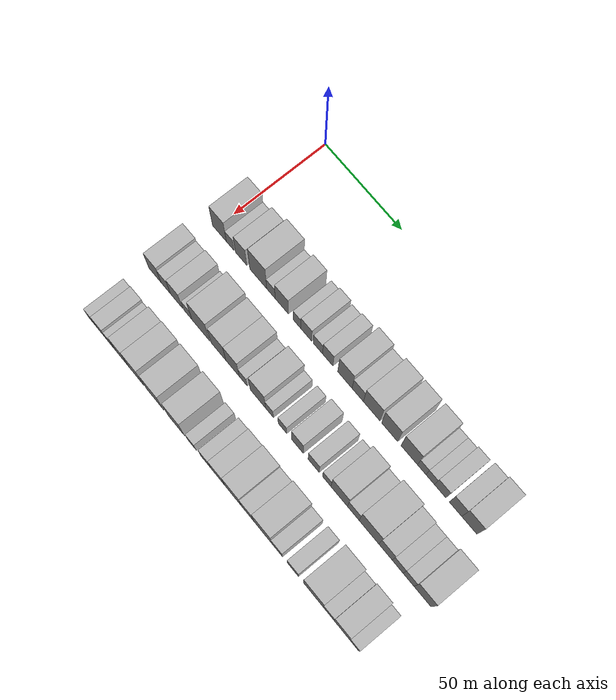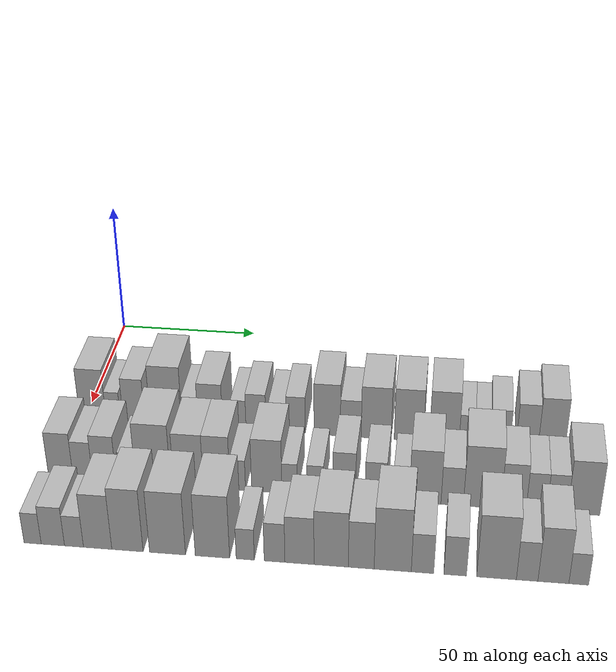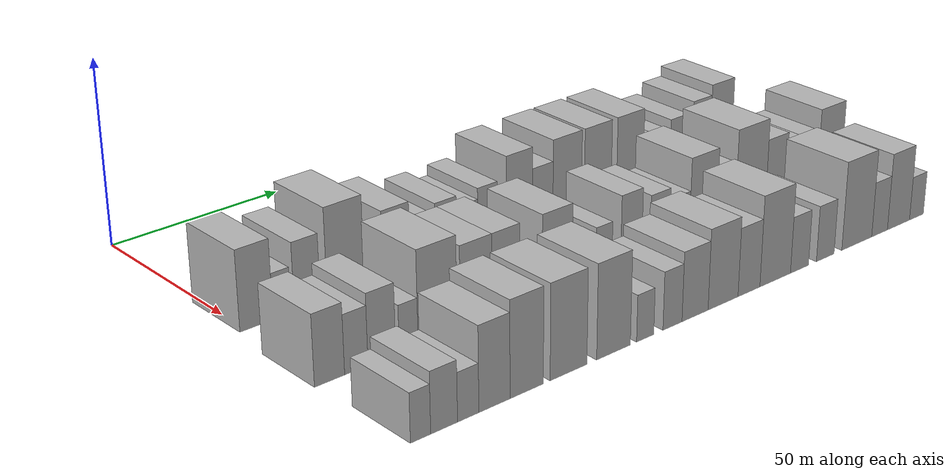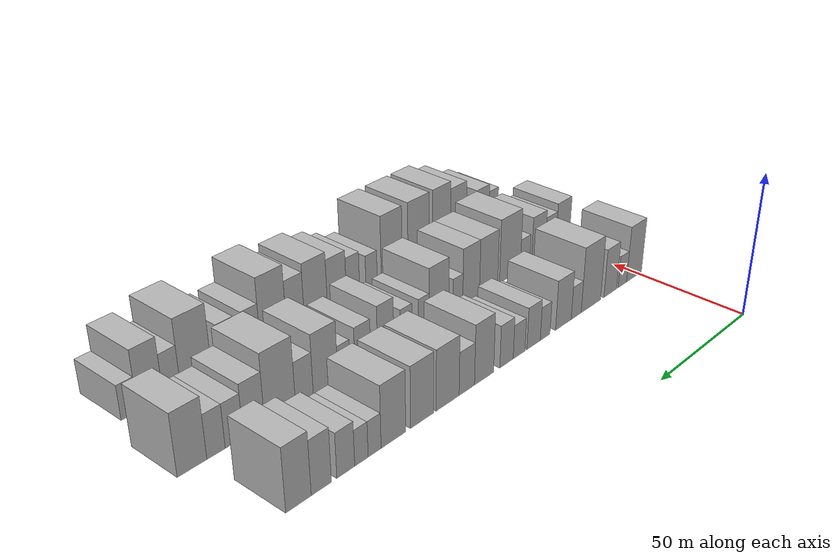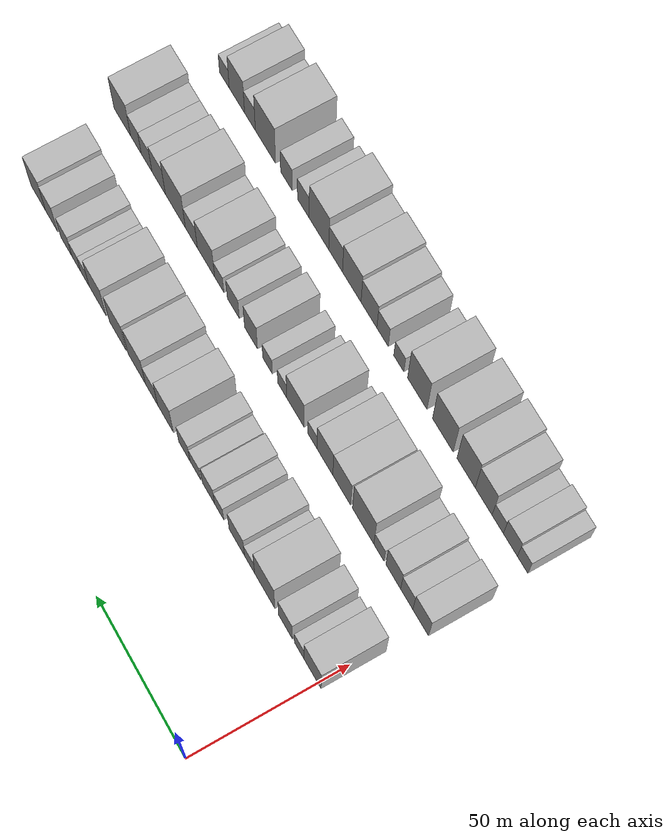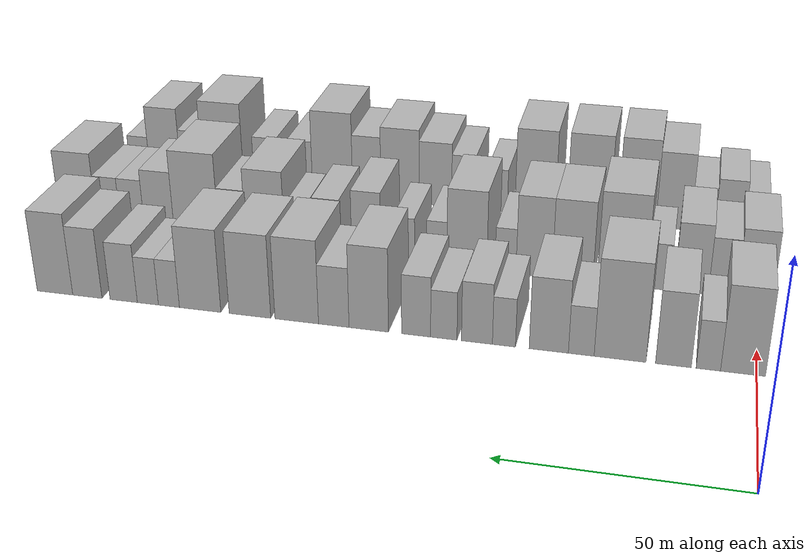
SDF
<sdf version="1.6">
 <world name="default">
  <model name="building_40">
   <static>1</static>
   <pose>50.0000 2.8850 0 0.000000 0.000000 0.000000</pose>
   <link name="link">
    <pose>0 0 10.50 0 0 0</pose>
    <collision name="collision"><geometry><box><size>20.0000 9.2605 21.0000</size></box></geometry></collision>
    <visual name="visual">
     <cast_shadows>0</cast_shadows>
     <geometry><box><size>20.0000 9.2605 21.0000</size></box></geometry>
     <material>
      <script>
       <uri>model://HANNAS_wall/materials/scripts</uri>
       <uri>model://HANNAS_wall/materials/textures</uri>
       <name>vrc/HANNAS_wall</name>
      </script>
     </material>
    </visual>
   </link>
  </model>
  <model name="building_41">
   <static>1</static>
   <pose>50.0000 10.0481 0 0.000000 0.000000 0.000000</pose>
   <link name="link">
    <pose>0 0 6.00 0 0 0</pose>
    <collision name="collision"><geometry><box><size>20.0000 5.0657 12.0000</size></box></geometry></collision>
    <visual name="visual">
     <cast_shadows>0</cast_shadows>
     <geometry><box><size>20.0000 5.0657 12.0000</size></box></geometry>
     <material>
      <script>
       <uri>model://HANNAS_wall/materials/scripts</uri>
       <uri>model://HANNAS_wall/materials/textures</uri>
       <name>vrc/HANNAS_wall</name>
      </script>
     </material>
    </visual>
   </link>
  </model>
  <model name="building_42">
   <static>1</static>
   <pose>50.0000 17.3400 0 0.000000 0.000000 0.000000</pose>
   <link name="link">
    <pose>0 0 9.00 0 0 0</pose>
    <collision name="collision"><geometry><box><size>20.0000 7.5182 18.0000</size></box></geometry></collision>
    <visual name="visual">
     <cast_shadows>0</cast_shadows>
     <geometry><box><size>20.0000 7.5182 18.0000</size></box></geometry>
     <material>
      <script>
       <uri>model://HANNAS_wall/materials/scripts</uri>
       <uri>model://HANNAS_wall/materials/textures</uri>
       <name>vrc/HANNAS_wall</name>
      </script>
     </material>
    </visual>
   </link>
  </model>
  <model name="building_43">
   <static>1</static>
   <pose>50.0000 28.6261 0 0.000000 0.000000 0.000000</pose>
   <link name="link">
    <pose>0 0 12.00 0 0 0</pose>
    <collision name="collision"><geometry><box><size>20.0000 11.0540 24.0000</size></box></geometry></collision>
    <visual name="visual">
     <cast_shadows>0</cast_shadows>
     <geometry><box><size>20.0000 11.0540 24.0000</size></box></geometry>
     <material>
      <script>
       <uri>model://HANNAS_wall/materials/scripts</uri>
       <uri>model://HANNAS_wall/materials/textures</uri>
       <name>vrc/HANNAS_wall</name>
      </script>
     </material>
    </visual>
   </link>
  </model>
  <model name="building_44">
   <static>1</static>
   <pose>50.0000 36.9282 0 0.000000 0.000000 0.000000</pose>
   <link name="link">
    <pose>0 0 6.00 0 0 0</pose>
    <collision name="collision"><geometry><box><size>20.0000 5.5501 12.0000</size></box></geometry></collision>
    <visual name="visual">
     <cast_shadows>0</cast_shadows>
     <geometry><box><size>20.0000 5.5501 12.0000</size></box></geometry>
     <material>
      <script>
       <uri>model://HANNAS_wall/materials/scripts</uri>
       <uri>model://HANNAS_wall/materials/textures</uri>
       <name>vrc/HANNAS_wall</name>
      </script>
     </material>
    </visual>
   </link>
  </model>
  <model name="building_45">
   <static>1</static>
   <pose>50.0000 43.9661 0 0.000000 0.000000 0.000000</pose>
   <link name="link">
    <pose>0 0 9.00 0 0 0</pose>
    <collision name="collision"><geometry><box><size>20.0000 8.5257 18.0000</size></box></geometry></collision>
    <visual name="visual">
     <cast_shadows>0</cast_shadows>
     <geometry><box><size>20.0000 8.5257 18.0000</size></box></geometry>
     <material>
      <script>
       <uri>model://HANNAS_wall/materials/scripts</uri>
       <uri>model://HANNAS_wall/materials/textures</uri>
       <name>vrc/HANNAS_wall</name>
      </script>
     </material>
    </visual>
   </link>
  </model>
  <model name="building_46">
   <static>1</static>
   <pose>50.0000 53.7685 0 0.000000 0.000000 0.000000</pose>
   <link name="link">
    <pose>0 0 6.00 0 0 0</pose>
    <collision name="collision"><geometry><box><size>20.0000 5.0791 12.0000</size></box></geometry></collision>
    <visual name="visual">
     <cast_shadows>0</cast_shadows>
     <geometry><box><size>20.0000 5.0791 12.0000</size></box></geometry>
     <material>
      <script>
       <uri>model://HANNAS_wall/materials/scripts</uri>
       <uri>model://HANNAS_wall/materials/textures</uri>
       <name>vrc/HANNAS_wall</name>
      </script>
     </material>
    </visual>
   </link>
  </model>
  <model name="building_47">
   <static>1</static>
   <pose>50.0000 59.7450 0 0.000000 0.000000 0.000000</pose>
   <link name="link">
    <pose>0 0 7.50 0 0 0</pose>
    <collision name="collision"><geometry><box><size>20.0000 6.8741 15.0000</size></box></geometry></collision>
    <visual name="visual">
     <cast_shadows>0</cast_shadows>
     <geometry><box><size>20.0000 6.8741 15.0000</size></box></geometry>
     <material>
      <script>
       <uri>model://HANNAS_wall/materials/scripts</uri>
       <uri>model://HANNAS_wall/materials/textures</uri>
       <name>vrc/HANNAS_wall</name>
      </script>
     </material>
    </visual>
   </link>
  </model>
  <model name="building_48">
   <static>1</static>
   <pose>50.0000 67.1361 0 0.000000 0.000000 0.000000</pose>
   <link name="link">
    <pose>0 0 6.00 0 0 0</pose>
    <collision name="collision"><geometry><box><size>20.0000 5.9081 12.0000</size></box></geometry></collision>
    <visual name="visual">
     <cast_shadows>0</cast_shadows>
     <geometry><box><size>20.0000 5.9081 12.0000</size></box></geometry>
     <material>
      <script>
       <uri>model://HANNAS_wall/materials/scripts</uri>
       <uri>model://HANNAS_wall/materials/textures</uri>
       <name>vrc/HANNAS_wall</name>
      </script>
     </material>
    </visual>
   </link>
  </model>
  <model name="building_49">
   <static>1</static>
   <pose>50.0000 73.3702 0 0.000000 0.000000 0.000000</pose>
   <link name="link">
    <pose>0 0 7.50 0 0 0</pose>
    <collision name="collision"><geometry><box><size>20.0000 6.5601 15.0000</size></box></geometry></collision>
    <visual name="visual">
     <cast_shadows>0</cast_shadows>
     <geometry><box><size>20.0000 6.5601 15.0000</size></box></geometry>
     <material>
      <script>
       <uri>model://HANNAS_wall/materials/scripts</uri>
       <uri>model://HANNAS_wall/materials/textures</uri>
       <name>vrc/HANNAS_wall</name>
      </script>
     </material>
    </visual>
   </link>
  </model>
  <model name="building_50">
   <static>1</static>
   <pose>50.0000 84.1636 0 0.000000 0.000000 0.000000</pose>
   <link name="link">
    <pose>0 0 10.50 0 0 0</pose>
    <collision name="collision"><geometry><box><size>20.0000 9.0267 21.0000</size></box></geometry></collision>
    <visual name="visual">
     <cast_shadows>0</cast_shadows>
     <geometry><box><size>20.0000 9.0267 21.0000</size></box></geometry>
     <material>
      <script>
       <uri>model://HANNAS_wall/materials/scripts</uri>
       <uri>model://HANNAS_wall/materials/textures</uri>
       <name>vrc/HANNAS_wall</name>
      </script>
     </material>
    </visual>
   </link>
  </model>
  <model name="building_51">
   <static>1</static>
   <pose>50.0000 92.2090 0 0.000000 0.000000 0.000000</pose>
   <link name="link">
    <pose>0 0 7.50 0 0 0</pose>
    <collision name="collision"><geometry><box><size>20.0000 7.0641 15.0000</size></box></geometry></collision>
    <visual name="visual">
     <cast_shadows>0</cast_shadows>
     <geometry><box><size>20.0000 7.0641 15.0000</size></box></geometry>
     <material>
      <script>
       <uri>model://HANNAS_wall/materials/scripts</uri>
       <uri>model://HANNAS_wall/materials/textures</uri>
       <name>vrc/HANNAS_wall</name>
      </script>
     </material>
    </visual>
   </link>
  </model>
  <model name="building_52">
   <static>1</static>
   <pose>50.0000 100.8446 0 0.000000 0.000000 0.000000</pose>
   <link name="link">
    <pose>0 0 10.50 0 0 0</pose>
    <collision name="collision"><geometry><box><size>20.0000 10.2070 21.0000</size></box></geometry></collision>
    <visual name="visual">
     <cast_shadows>0</cast_shadows>
     <geometry><box><size>20.0000 10.2070 21.0000</size></box></geometry>
     <material>
      <script>
       <uri>model://HANNAS_wall/materials/scripts</uri>
       <uri>model://HANNAS_wall/materials/textures</uri>
       <name>vrc/HANNAS_wall</name>
      </script>
     </material>
    </visual>
   </link>
  </model>
  <model name="building_53">
   <static>1</static>
   <pose>50.0000 111.8864 0 0.000000 0.000000 0.000000</pose>
   <link name="link">
    <pose>0 0 10.50 0 0 0</pose>
    <collision name="collision"><geometry><box><size>20.0000 9.8765 21.0000</size></box></geometry></collision>
    <visual name="visual">
     <cast_shadows>0</cast_shadows>
     <geometry><box><size>20.0000 9.8765 21.0000</size></box></geometry>
     <material>
      <script>
       <uri>model://HANNAS_wall/materials/scripts</uri>
       <uri>model://HANNAS_wall/materials/textures</uri>
       <name>vrc/HANNAS_wall</name>
      </script>
     </material>
    </visual>
   </link>
  </model>
  <model name="building_54">
   <static>1</static>
   <pose>50.0000 123.8208 0 0.000000 0.000000 0.000000</pose>
   <link name="link">
    <pose>0 0 10.50 0 0 0</pose>
    <collision name="collision"><geometry><box><size>20.0000 9.9922 21.0000</size></box></geometry></collision>
    <visual name="visual">
     <cast_shadows>0</cast_shadows>
     <geometry><box><size>20.0000 9.9922 21.0000</size></box></geometry>
     <material>
      <script>
       <uri>model://HANNAS_wall/materials/scripts</uri>
       <uri>model://HANNAS_wall/materials/textures</uri>
       <name>vrc/HANNAS_wall</name>
      </script>
     </material>
    </visual>
   </link>
  </model>
  <model name="building_55">
   <static>1</static>
   <pose>50.0000 131.3743 0 0.000000 0.000000 0.000000</pose>
   <link name="link">
    <pose>0 0 6.00 0 0 0</pose>
    <collision name="collision"><geometry><box><size>20.0000 5.1148 12.0000</size></box></geometry></collision>
    <visual name="visual">
     <cast_shadows>0</cast_shadows>
     <geometry><box><size>20.0000 5.1148 12.0000</size></box></geometry>
     <material>
      <script>
       <uri>model://HANNAS_wall/materials/scripts</uri>
       <uri>model://HANNAS_wall/materials/textures</uri>
       <name>vrc/HANNAS_wall</name>
      </script>
     </material>
    </visual>
   </link>
  </model>
  <model name="building_56">
   <static>1</static>
   <pose>50.0000 136.5157 0 0.000000 0.000000 0.000000</pose>
   <link name="link">
    <pose>0 0 6.00 0 0 0</pose>
    <collision name="collision"><geometry><box><size>20.0000 5.1680 12.0000</size></box></geometry></collision>
    <visual name="visual">
     <cast_shadows>0</cast_shadows>
     <geometry><box><size>20.0000 5.1680 12.0000</size></box></geometry>
     <material>
      <script>
       <uri>model://HANNAS_wall/materials/scripts</uri>
       <uri>model://HANNAS_wall/materials/textures</uri>
       <name>vrc/HANNAS_wall</name>
      </script>
     </material>
    </visual>
   </link>
  </model>
  <model name="building_57">
   <static>1</static>
   <pose>50.0000 142.4698 0 0.000000 0.000000 0.000000</pose>
   <link name="link">
    <pose>0 0 7.50 0 0 0</pose>
    <collision name="collision"><geometry><box><size>20.0000 6.7401 15.0000</size></box></geometry></collision>
    <visual name="visual">
     <cast_shadows>0</cast_shadows>
     <geometry><box><size>20.0000 6.7401 15.0000</size></box></geometry>
     <material>
      <script>
       <uri>model://HANNAS_wall/materials/scripts</uri>
       <uri>model://HANNAS_wall/materials/textures</uri>
       <name>vrc/HANNAS_wall</name>
      </script>
     </material>
    </visual>
   </link>
  </model>
  <model name="building_58">
   <static>1</static>
   <pose>50.0000 151.4992 0 0.000000 0.000000 0.000000</pose>
   <link name="link">
    <pose>0 0 9.00 0 0 0</pose>
    <collision name="collision"><geometry><box><size>20.0000 7.3187 18.0000</size></box></geometry></collision>
    <visual name="visual">
     <cast_shadows>0</cast_shadows>
     <geometry><box><size>20.0000 7.3187 18.0000</size></box></geometry>
     <material>
      <script>
       <uri>model://HANNAS_wall/materials/scripts</uri>
       <uri>model://HANNAS_wall/materials/textures</uri>
       <name>vrc/HANNAS_wall</name>
      </script>
     </material>
    </visual>
   </link>
  </model>
  <model name="building_59">
   <static>1</static>
   <pose>50.0000 159.6330 0 0.000000 0.000000 0.000000</pose>
   <link name="link">
    <pose>0 0 10.50 0 0 0</pose>
    <collision name="collision"><geometry><box><size>20.0000 8.9490 21.0000</size></box></geometry></collision>
    <visual name="visual">
     <cast_shadows>0</cast_shadows>
     <geometry><box><size>20.0000 8.9490 21.0000</size></box></geometry>
     <material>
      <script>
       <uri>model://HANNAS_wall/materials/scripts</uri>
       <uri>model://HANNAS_wall/materials/textures</uri>
       <name>vrc/HANNAS_wall</name>
      </script>
     </material>
    </visual>
   </link>
  </model>
  <model name="building_119">
   <static>1</static>
   <pose>82.0000 0.3162 0 0.000000 0.000000 0.000000</pose>
   <link name="link">
    <pose>0 0 9.00 0 0 0</pose>
    <collision name="collision"><geometry><box><size>20.0000 8.1836 18.0000</size></box></geometry></collision>
    <visual name="visual">
     <cast_shadows>0</cast_shadows>
     <geometry><box><size>20.0000 8.1836 18.0000</size></box></geometry>
     <material>
      <script>
       <uri>model://HANNAS_wall/materials/scripts</uri>
       <uri>model://HANNAS_wall/materials/textures</uri>
       <name>vrc/HANNAS_wall</name>
      </script>
     </material>
    </visual>
   </link>
  </model>
  <model name="building_120">
   <static>1</static>
   <pose>82.0000 7.6475 0 0.000000 0.000000 0.000000</pose>
   <link name="link">
    <pose>0 0 7.50 0 0 0</pose>
    <collision name="collision"><geometry><box><size>20.0000 6.4788 15.0000</size></box></geometry></collision>
    <visual name="visual">
     <cast_shadows>0</cast_shadows>
     <geometry><box><size>20.0000 6.4788 15.0000</size></box></geometry>
     <material>
      <script>
       <uri>model://HANNAS_wall/materials/scripts</uri>
       <uri>model://HANNAS_wall/materials/textures</uri>
       <name>vrc/HANNAS_wall</name>
      </script>
     </material>
    </visual>
   </link>
  </model>
  <model name="building_121">
   <static>1</static>
   <pose>82.0000 14.7976 0 0.000000 0.000000 0.000000</pose>
   <link name="link">
    <pose>0 0 9.00 0 0 0</pose>
    <collision name="collision"><geometry><box><size>20.0000 7.8214 18.0000</size></box></geometry></collision>
    <visual name="visual">
     <cast_shadows>0</cast_shadows>
     <geometry><box><size>20.0000 7.8214 18.0000</size></box></geometry>
     <material>
      <script>
       <uri>model://HANNAS_wall/materials/scripts</uri>
       <uri>model://HANNAS_wall/materials/textures</uri>
       <name>vrc/HANNAS_wall</name>
      </script>
     </material>
    </visual>
   </link>
  </model>
  <model name="building_122">
   <static>1</static>
   <pose>82.0000 22.4304 0 0.000000 0.000000 0.000000</pose>
   <link name="link">
    <pose>0 0 6.00 0 0 0</pose>
    <collision name="collision"><geometry><box><size>20.0000 5.4442 12.0000</size></box></geometry></collision>
    <visual name="visual">
     <cast_shadows>0</cast_shadows>
     <geometry><box><size>20.0000 5.4442 12.0000</size></box></geometry>
     <material>
      <script>
       <uri>model://HANNAS_wall/materials/scripts</uri>
       <uri>model://HANNAS_wall/materials/textures</uri>
       <name>vrc/HANNAS_wall</name>
      </script>
     </material>
    </visual>
   </link>
  </model>
  <model name="building_123">
   <static>1</static>
   <pose>82.0000 30.9153 0 0.000000 0.000000 0.000000</pose>
   <link name="link">
    <pose>0 0 12.00 0 0 0</pose>
    <collision name="collision"><geometry><box><size>20.0000 11.5256 24.0000</size></box></geometry></collision>
    <visual name="visual">
     <cast_shadows>0</cast_shadows>
     <geometry><box><size>20.0000 11.5256 24.0000</size></box></geometry>
     <material>
      <script>
       <uri>model://HANNAS_wall/materials/scripts</uri>
       <uri>model://HANNAS_wall/materials/textures</uri>
       <name>vrc/HANNAS_wall</name>
      </script>
     </material>
    </visual>
   </link>
  </model>
  <model name="building_124">
   <static>1</static>
   <pose>82.0000 42.5215 0 0.000000 0.000000 0.000000</pose>
   <link name="link">
    <pose>0 0 10.50 0 0 0</pose>
    <collision name="collision"><geometry><box><size>20.0000 9.6868 21.0000</size></box></geometry></collision>
    <visual name="visual">
     <cast_shadows>0</cast_shadows>
     <geometry><box><size>20.0000 9.6868 21.0000</size></box></geometry>
     <material>
      <script>
       <uri>model://HANNAS_wall/materials/scripts</uri>
       <uri>model://HANNAS_wall/materials/textures</uri>
       <name>vrc/HANNAS_wall</name>
      </script>
     </material>
    </visual>
   </link>
  </model>
  <model name="building_125">
   <static>1</static>
   <pose>82.0000 51.7004 0 0.000000 0.000000 0.000000</pose>
   <link name="link">
    <pose>0 0 10.50 0 0 0</pose>
    <collision name="collision"><geometry><box><size>20.0000 8.6711 21.0000</size></box></geometry></collision>
    <visual name="visual">
     <cast_shadows>0</cast_shadows>
     <geometry><box><size>20.0000 8.6711 21.0000</size></box></geometry>
     <material>
      <script>
       <uri>model://HANNAS_wall/materials/scripts</uri>
       <uri>model://HANNAS_wall/materials/textures</uri>
       <name>vrc/HANNAS_wall</name>
      </script>
     </material>
    </visual>
   </link>
  </model>
  <model name="building_126">
   <static>1</static>
   <pose>82.0000 58.5724 0 0.000000 0.000000 0.000000</pose>
   <link name="link">
    <pose>0 0 6.00 0 0 0</pose>
    <collision name="collision"><geometry><box><size>20.0000 5.0728 12.0000</size></box></geometry></collision>
    <visual name="visual">
     <cast_shadows>0</cast_shadows>
     <geometry><box><size>20.0000 5.0728 12.0000</size></box></geometry>
     <material>
      <script>
       <uri>model://HANNAS_wall/materials/scripts</uri>
       <uri>model://HANNAS_wall/materials/textures</uri>
       <name>vrc/HANNAS_wall</name>
      </script>
     </material>
    </visual>
   </link>
  </model>
  <model name="building_127">
   <static>1</static>
   <pose>82.0000 67.9961 0 0.000000 0.000000 0.000000</pose>
   <link name="link">
    <pose>0 0 10.50 0 0 0</pose>
    <collision name="collision"><geometry><box><size>20.0000 9.7746 21.0000</size></box></geometry></collision>
    <visual name="visual">
     <cast_shadows>0</cast_shadows>
     <geometry><box><size>20.0000 9.7746 21.0000</size></box></geometry>
     <material>
      <script>
       <uri>model://HANNAS_wall/materials/scripts</uri>
       <uri>model://HANNAS_wall/materials/textures</uri>
       <name>vrc/HANNAS_wall</name>
      </script>
     </material>
    </visual>
   </link>
  </model>
  <model name="building_128">
   <static>1</static>
   <pose>82.0000 75.3845 0 0.000000 0.000000 0.000000</pose>
   <link name="link">
    <pose>0 0 6.00 0 0 0</pose>
    <collision name="collision"><geometry><box><size>20.0000 5.0022 12.0000</size></box></geometry></collision>
    <visual name="visual">
     <cast_shadows>0</cast_shadows>
     <geometry><box><size>20.0000 5.0022 12.0000</size></box></geometry>
     <material>
      <script>
       <uri>model://HANNAS_wall/materials/scripts</uri>
       <uri>model://HANNAS_wall/materials/textures</uri>
       <name>vrc/HANNAS_wall</name>
      </script>
     </material>
    </visual>
   </link>
  </model>
  <model name="building_129">
   <static>1</static>
   <pose>82.0000 83.5836 0 0.000000 0.000000 0.000000</pose>
   <link name="link">
    <pose>0 0 6.00 0 0 0</pose>
    <collision name="collision"><geometry><box><size>20.0000 5.3961 12.0000</size></box></geometry></collision>
    <visual name="visual">
     <cast_shadows>0</cast_shadows>
     <geometry><box><size>20.0000 5.3961 12.0000</size></box></geometry>
     <material>
      <script>
       <uri>model://HANNAS_wall/materials/scripts</uri>
       <uri>model://HANNAS_wall/materials/textures</uri>
       <name>vrc/HANNAS_wall</name>
      </script>
     </material>
    </visual>
   </link>
  </model>
  <model name="building_130">
   <static>1</static>
   <pose>82.0000 92.9439 0 0.000000 0.000000 0.000000</pose>
   <link name="link">
    <pose>0 0 9.00 0 0 0</pose>
    <collision name="collision"><geometry><box><size>20.0000 7.3245 18.0000</size></box></geometry></collision>
    <visual name="visual">
     <cast_shadows>0</cast_shadows>
     <geometry><box><size>20.0000 7.3245 18.0000</size></box></geometry>
     <material>
      <script>
       <uri>model://HANNAS_wall/materials/scripts</uri>
       <uri>model://HANNAS_wall/materials/textures</uri>
       <name>vrc/HANNAS_wall</name>
      </script>
     </material>
    </visual>
   </link>
  </model>
  <model name="building_131">
   <static>1</static>
   <pose>82.0000 103.0411 0 0.000000 0.000000 0.000000</pose>
   <link name="link">
    <pose>0 0 7.50 0 0 0</pose>
    <collision name="collision"><geometry><box><size>20.0000 6.8701 15.0000</size></box></geometry></collision>
    <visual name="visual">
     <cast_shadows>0</cast_shadows>
     <geometry><box><size>20.0000 6.8701 15.0000</size></box></geometry>
     <material>
      <script>
       <uri>model://HANNAS_wall/materials/scripts</uri>
       <uri>model://HANNAS_wall/materials/textures</uri>
       <name>vrc/HANNAS_wall</name>
      </script>
     </material>
    </visual>
   </link>
  </model>
  <model name="building_132">
   <static>1</static>
   <pose>82.0000 111.1102 0 0.000000 0.000000 0.000000</pose>
   <link name="link">
    <pose>0 0 6.00 0 0 0</pose>
    <collision name="collision"><geometry><box><size>20.0000 5.2680 12.0000</size></box></geometry></collision>
    <visual name="visual">
     <cast_shadows>0</cast_shadows>
     <geometry><box><size>20.0000 5.2680 12.0000</size></box></geometry>
     <material>
      <script>
       <uri>model://HANNAS_wall/materials/scripts</uri>
       <uri>model://HANNAS_wall/materials/textures</uri>
       <name>vrc/HANNAS_wall</name>
      </script>
     </material>
    </visual>
   </link>
  </model>
  <model name="building_133">
   <static>1</static>
   <pose>82.0000 118.7772 0 0.000000 0.000000 0.000000</pose>
   <link name="link">
    <pose>0 0 10.50 0 0 0</pose>
    <collision name="collision"><geometry><box><size>20.0000 10.0662 21.0000</size></box></geometry></collision>
    <visual name="visual">
     <cast_shadows>0</cast_shadows>
     <geometry><box><size>20.0000 10.0662 21.0000</size></box></geometry>
     <material>
      <script>
       <uri>model://HANNAS_wall/materials/scripts</uri>
       <uri>model://HANNAS_wall/materials/textures</uri>
       <name>vrc/HANNAS_wall</name>
      </script>
     </material>
    </visual>
   </link>
  </model>
  <model name="building_134">
   <static>1</static>
   <pose>82.0000 127.3433 0 0.000000 0.000000 0.000000</pose>
   <link name="link">
    <pose>0 0 7.50 0 0 0</pose>
    <collision name="collision"><geometry><box><size>20.0000 7.0659 15.0000</size></box></geometry></collision>
    <visual name="visual">
     <cast_shadows>0</cast_shadows>
     <geometry><box><size>20.0000 7.0659 15.0000</size></box></geometry>
     <material>
      <script>
       <uri>model://HANNAS_wall/materials/scripts</uri>
       <uri>model://HANNAS_wall/materials/textures</uri>
       <name>vrc/HANNAS_wall</name>
      </script>
     </material>
    </visual>
   </link>
  </model>
  <model name="building_135">
   <static>1</static>
   <pose>82.0000 136.7844 0 0.000000 0.000000 0.000000</pose>
   <link name="link">
    <pose>0 0 12.00 0 0 0</pose>
    <collision name="collision"><geometry><box><size>20.0000 11.8164 24.0000</size></box></geometry></collision>
    <visual name="visual">
     <cast_shadows>0</cast_shadows>
     <geometry><box><size>20.0000 11.8164 24.0000</size></box></geometry>
     <material>
      <script>
       <uri>model://HANNAS_wall/materials/scripts</uri>
       <uri>model://HANNAS_wall/materials/textures</uri>
       <name>vrc/HANNAS_wall</name>
      </script>
     </material>
    </visual>
   </link>
  </model>
  <model name="building_136">
   <static>1</static>
   <pose>82.0000 146.6619 0 0.000000 0.000000 0.000000</pose>
   <link name="link">
    <pose>0 0 9.00 0 0 0</pose>
    <collision name="collision"><geometry><box><size>20.0000 7.9386 18.0000</size></box></geometry></collision>
    <visual name="visual">
     <cast_shadows>0</cast_shadows>
     <geometry><box><size>20.0000 7.9386 18.0000</size></box></geometry>
     <material>
      <script>
       <uri>model://HANNAS_wall/materials/scripts</uri>
       <uri>model://HANNAS_wall/materials/textures</uri>
       <name>vrc/HANNAS_wall</name>
      </script>
     </material>
    </visual>
   </link>
  </model>
  <model name="building_137">
   <static>1</static>
   <pose>82.0000 153.8592 0 0.000000 0.000000 0.000000</pose>
   <link name="link">
    <pose>0 0 7.50 0 0 0</pose>
    <collision name="collision"><geometry><box><size>20.0000 6.4561 15.0000</size></box></geometry></collision>
    <visual name="visual">
     <cast_shadows>0</cast_shadows>
     <geometry><box><size>20.0000 6.4561 15.0000</size></box></geometry>
     <material>
      <script>
       <uri>model://HANNAS_wall/materials/scripts</uri>
       <uri>model://HANNAS_wall/materials/textures</uri>
       <name>vrc/HANNAS_wall</name>
      </script>
     </material>
    </visual>
   </link>
  </model>
  <model name="building_138">
   <static>1</static>
   <pose>82.0000 160.2995 0 0.000000 0.000000 0.000000</pose>
   <link name="link">
    <pose>0 0 7.50 0 0 0</pose>
    <collision name="collision"><geometry><box><size>20.0000 6.4244 15.0000</size></box></geometry></collision>
    <visual name="visual">
     <cast_shadows>0</cast_shadows>
     <geometry><box><size>20.0000 6.4244 15.0000</size></box></geometry>
     <material>
      <script>
       <uri>model://HANNAS_wall/materials/scripts</uri>
       <uri>model://HANNAS_wall/materials/textures</uri>
       <name>vrc/HANNAS_wall</name>
      </script>
     </material>
    </visual>
   </link>
  </model>
  <model name="building_139">
   <static>1</static>
   <pose>82.0000 168.5502 0 0.000000 0.000000 0.000000</pose>
   <link name="link">
    <pose>0 0 10.50 0 0 0</pose>
    <collision name="collision"><geometry><box><size>20.0000 10.0770 21.0000</size></box></geometry></collision>
    <visual name="visual">
     <cast_shadows>0</cast_shadows>
     <geometry><box><size>20.0000 10.0770 21.0000</size></box></geometry>
     <material>
      <script>
       <uri>model://HANNAS_wall/materials/scripts</uri>
       <uri>model://HANNAS_wall/materials/textures</uri>
       <name>vrc/HANNAS_wall</name>
      </script>
     </material>
    </visual>
   </link>
  </model>
  <model name="building_199">
   <static>1</static>
   <pose>114.0000 0.2023 0 0.000000 0.000000 0.000000</pose>
   <link name="link">
    <pose>0 0 6.00 0 0 0</pose>
    <collision name="collision"><geometry><box><size>20.0000 5.4021 12.0000</size></box></geometry></collision>
    <visual name="visual">
     <cast_shadows>0</cast_shadows>
     <geometry><box><size>20.0000 5.4021 12.0000</size></box></geometry>
     <material>
      <script>
       <uri>model://HANNAS_wall/materials/scripts</uri>
       <uri>model://HANNAS_wall/materials/textures</uri>
       <name>vrc/HANNAS_wall</name>
      </script>
     </material>
    </visual>
   </link>
  </model>
  <model name="building_200">
   <static>1</static>
   <pose>114.0000 6.5460 0 0.000000 0.000000 0.000000</pose>
   <link name="link">
    <pose>0 0 7.50 0 0 0</pose>
    <collision name="collision"><geometry><box><size>20.0000 7.2853 15.0000</size></box></geometry></collision>
    <visual name="visual">
     <cast_shadows>0</cast_shadows>
     <geometry><box><size>20.0000 7.2853 15.0000</size></box></geometry>
     <material>
      <script>
       <uri>model://HANNAS_wall/materials/scripts</uri>
       <uri>model://HANNAS_wall/materials/textures</uri>
       <name>vrc/HANNAS_wall</name>
      </script>
     </material>
    </visual>
   </link>
  </model>
  <model name="building_201">
   <static>1</static>
   <pose>114.0000 13.1417 0 0.000000 0.000000 0.000000</pose>
   <link name="link">
    <pose>0 0 6.00 0 0 0</pose>
    <collision name="collision"><geometry><box><size>20.0000 5.9060 12.0000</size></box></geometry></collision>
    <visual name="visual">
     <cast_shadows>0</cast_shadows>
     <geometry><box><size>20.0000 5.9060 12.0000</size></box></geometry>
     <material>
      <script>
       <uri>model://HANNAS_wall/materials/scripts</uri>
       <uri>model://HANNAS_wall/materials/textures</uri>
       <name>vrc/HANNAS_wall</name>
      </script>
     </material>
    </visual>
   </link>
  </model>
  <model name="building_202">
   <static>1</static>
   <pose>114.0000 20.5076 0 0.000000 0.000000 0.000000</pose>
   <link name="link">
    <pose>0 0 10.50 0 0 0</pose>
    <collision name="collision"><geometry><box><size>20.0000 8.8258 21.0000</size></box></geometry></collision>
    <visual name="visual">
     <cast_shadows>0</cast_shadows>
     <geometry><box><size>20.0000 8.8258 21.0000</size></box></geometry>
     <material>
      <script>
       <uri>model://HANNAS_wall/materials/scripts</uri>
       <uri>model://HANNAS_wall/materials/textures</uri>
       <name>vrc/HANNAS_wall</name>
      </script>
     </material>
    </visual>
   </link>
  </model>
  <model name="building_203">
   <static>1</static>
   <pose>114.0000 29.7609 0 0.000000 0.000000 0.000000</pose>
   <link name="link">
    <pose>0 0 12.00 0 0 0</pose>
    <collision name="collision"><geometry><box><size>20.0000 9.6809 24.0000</size></box></geometry></collision>
    <visual name="visual">
     <cast_shadows>0</cast_shadows>
     <geometry><box><size>20.0000 9.6809 24.0000</size></box></geometry>
     <material>
      <script>
       <uri>model://HANNAS_wall/materials/scripts</uri>
       <uri>model://HANNAS_wall/materials/textures</uri>
       <name>vrc/HANNAS_wall</name>
      </script>
     </material>
    </visual>
   </link>
  </model>
  <model name="building_204">
   <static>1</static>
   <pose>114.0000 42.1424 0 0.000000 0.000000 0.000000</pose>
   <link name="link">
    <pose>0 0 12.00 0 0 0</pose>
    <collision name="collision"><geometry><box><size>20.0000 11.0821 24.0000</size></box></geometry></collision>
    <visual name="visual">
     <cast_shadows>0</cast_shadows>
     <geometry><box><size>20.0000 11.0821 24.0000</size></box></geometry>
     <material>
      <script>
       <uri>model://HANNAS_wall/materials/scripts</uri>
       <uri>model://HANNAS_wall/materials/textures</uri>
       <name>vrc/HANNAS_wall</name>
      </script>
     </material>
    </visual>
   </link>
  </model>
  <model name="building_205">
   <static>1</static>
   <pose>114.0000 55.9490 0 0.000000 0.000000 0.000000</pose>
   <link name="link">
    <pose>0 0 12.00 0 0 0</pose>
    <collision name="collision"><geometry><box><size>20.0000 10.5310 24.0000</size></box></geometry></collision>
    <visual name="visual">
     <cast_shadows>0</cast_shadows>
     <geometry><box><size>20.0000 10.5310 24.0000</size></box></geometry>
     <material>
      <script>
       <uri>model://HANNAS_wall/materials/scripts</uri>
       <uri>model://HANNAS_wall/materials/textures</uri>
       <name>vrc/HANNAS_wall</name>
      </script>
     </material>
    </visual>
   </link>
  </model>
  <model name="building_206">
   <static>1</static>
   <pose>114.0000 65.9827 0 0.000000 0.000000 0.000000</pose>
   <link name="link">
    <pose>0 0 6.00 0 0 0</pose>
    <collision name="collision"><geometry><box><size>20.0000 5.5363 12.0000</size></box></geometry></collision>
    <visual name="visual">
     <cast_shadows>0</cast_shadows>
     <geometry><box><size>20.0000 5.5363 12.0000</size></box></geometry>
     <material>
      <script>
       <uri>model://HANNAS_wall/materials/scripts</uri>
       <uri>model://HANNAS_wall/materials/textures</uri>
       <name>vrc/HANNAS_wall</name>
      </script>
     </material>
    </visual>
   </link>
  </model>
  <model name="building_207">
   <static>1</static>
   <pose>114.0000 74.8977 0 0.000000 0.000000 0.000000</pose>
   <link name="link">
    <pose>0 0 7.50 0 0 0</pose>
    <collision name="collision"><geometry><box><size>20.0000 6.2936 15.0000</size></box></geometry></collision>
    <visual name="visual">
     <cast_shadows>0</cast_shadows>
     <geometry><box><size>20.0000 6.2936 15.0000</size></box></geometry>
     <material>
      <script>
       <uri>model://HANNAS_wall/materials/scripts</uri>
       <uri>model://HANNAS_wall/materials/textures</uri>
       <name>vrc/HANNAS_wall</name>
      </script>
     </material>
    </visual>
   </link>
  </model>
  <model name="building_208">
   <static>1</static>
   <pose>114.0000 82.4399 0 0.000000 0.000000 0.000000</pose>
   <link name="link">
    <pose>0 0 9.00 0 0 0</pose>
    <collision name="collision"><geometry><box><size>20.0000 8.7909 18.0000</size></box></geometry></collision>
    <visual name="visual">
     <cast_shadows>0</cast_shadows>
     <geometry><box><size>20.0000 8.7909 18.0000</size></box></geometry>
     <material>
      <script>
       <uri>model://HANNAS_wall/materials/scripts</uri>
       <uri>model://HANNAS_wall/materials/textures</uri>
       <name>vrc/HANNAS_wall</name>
      </script>
     </material>
    </visual>
   </link>
  </model>
  <model name="building_209">
   <static>1</static>
   <pose>114.0000 92.0141 0 0.000000 0.000000 0.000000</pose>
   <link name="link">
    <pose>0 0 10.50 0 0 0</pose>
    <collision name="collision"><geometry><box><size>20.0000 10.3576 21.0000</size></box></geometry></collision>
    <visual name="visual">
     <cast_shadows>0</cast_shadows>
     <geometry><box><size>20.0000 10.3576 21.0000</size></box></geometry>
     <material>
      <script>
       <uri>model://HANNAS_wall/materials/scripts</uri>
       <uri>model://HANNAS_wall/materials/textures</uri>
       <name>vrc/HANNAS_wall</name>
      </script>
     </material>
    </visual>
   </link>
  </model>
  <model name="building_210">
   <static>1</static>
   <pose>114.0000 101.0701 0 0.000000 0.000000 0.000000</pose>
   <link name="link">
    <pose>0 0 9.00 0 0 0</pose>
    <collision name="collision"><geometry><box><size>20.0000 7.7543 18.0000</size></box></geometry></collision>
    <visual name="visual">
     <cast_shadows>0</cast_shadows>
     <geometry><box><size>20.0000 7.7543 18.0000</size></box></geometry>
     <material>
      <script>
       <uri>model://HANNAS_wall/materials/scripts</uri>
       <uri>model://HANNAS_wall/materials/textures</uri>
       <name>vrc/HANNAS_wall</name>
      </script>
     </material>
    </visual>
   </link>
  </model>
  <model name="building_211">
   <static>1</static>
   <pose>114.0000 110.4990 0 0.000000 0.000000 0.000000</pose>
   <link name="link">
    <pose>0 0 12.00 0 0 0</pose>
    <collision name="collision"><geometry><box><size>20.0000 11.1035 24.0000</size></box></geometry></collision>
    <visual name="visual">
     <cast_shadows>0</cast_shadows>
     <geometry><box><size>20.0000 11.1035 24.0000</size></box></geometry>
     <material>
      <script>
       <uri>model://HANNAS_wall/materials/scripts</uri>
       <uri>model://HANNAS_wall/materials/textures</uri>
       <name>vrc/HANNAS_wall</name>
      </script>
     </material>
    </visual>
   </link>
  </model>
  <model name="building_212">
   <static>1</static>
   <pose>114.0000 119.3949 0 0.000000 0.000000 0.000000</pose>
   <link name="link">
    <pose>0 0 7.50 0 0 0</pose>
    <collision name="collision"><geometry><box><size>20.0000 6.6882 15.0000</size></box></geometry></collision>
    <visual name="visual">
     <cast_shadows>0</cast_shadows>
     <geometry><box><size>20.0000 6.6882 15.0000</size></box></geometry>
     <material>
      <script>
       <uri>model://HANNAS_wall/materials/scripts</uri>
       <uri>model://HANNAS_wall/materials/textures</uri>
       <name>vrc/HANNAS_wall</name>
      </script>
     </material>
    </visual>
   </link>
  </model>
  <model name="building_213">
   <static>1</static>
   <pose>114.0000 129.0965 0 0.000000 0.000000 0.000000</pose>
   <link name="link">
    <pose>0 0 7.50 0 0 0</pose>
    <collision name="collision"><geometry><box><size>20.0000 6.7152 15.0000</size></box></geometry></collision>
    <visual name="visual">
     <cast_shadows>0</cast_shadows>
     <geometry><box><size>20.0000 6.7152 15.0000</size></box></geometry>
     <material>
      <script>
       <uri>model://HANNAS_wall/materials/scripts</uri>
       <uri>model://HANNAS_wall/materials/textures</uri>
       <name>vrc/HANNAS_wall</name>
      </script>
     </material>
    </visual>
   </link>
  </model>
  <model name="building_214">
   <static>1</static>
   <pose>114.0000 141.3220 0 0.000000 0.000000 0.000000</pose>
   <link name="link">
    <pose>0 0 12.00 0 0 0</pose>
    <collision name="collision"><geometry><box><size>20.0000 11.7358 24.0000</size></box></geometry></collision>
    <visual name="visual">
     <cast_shadows>0</cast_shadows>
     <geometry><box><size>20.0000 11.7358 24.0000</size></box></geometry>
     <material>
      <script>
       <uri>model://HANNAS_wall/materials/scripts</uri>
       <uri>model://HANNAS_wall/materials/textures</uri>
       <name>vrc/HANNAS_wall</name>
      </script>
     </material>
    </visual>
   </link>
  </model>
  <model name="building_215">
   <static>1</static>
   <pose>114.0000 150.3505 0 0.000000 0.000000 0.000000</pose>
   <link name="link">
    <pose>0 0 7.50 0 0 0</pose>
    <collision name="collision"><geometry><box><size>20.0000 6.3210 15.0000</size></box></geometry></collision>
    <visual name="visual">
     <cast_shadows>0</cast_shadows>
     <geometry><box><size>20.0000 6.3210 15.0000</size></box></geometry>
     <material>
      <script>
       <uri>model://HANNAS_wall/materials/scripts</uri>
       <uri>model://HANNAS_wall/materials/textures</uri>
       <name>vrc/HANNAS_wall</name>
      </script>
     </material>
    </visual>
   </link>
  </model>
  <model name="building_216">
   <static>1</static>
   <pose>114.0000 158.0360 0 0.000000 0.000000 0.000000</pose>
   <link name="link">
    <pose>0 0 10.50 0 0 0</pose>
    <collision name="collision"><geometry><box><size>20.0000 9.0501 21.0000</size></box></geometry></collision>
    <visual name="visual">
     <cast_shadows>0</cast_shadows>
     <geometry><box><size>20.0000 9.0501 21.0000</size></box></geometry>
     <material>
      <script>
       <uri>model://HANNAS_wall/materials/scripts</uri>
       <uri>model://HANNAS_wall/materials/textures</uri>
       <name>vrc/HANNAS_wall</name>
      </script>
     </material>
    </visual>
   </link>
  </model>
  <model name="building_217">
   <static>1</static>
   <pose>114.0000 165.4468 0 0.000000 0.000000 0.000000</pose>
   <link name="link">
    <pose>0 0 6.00 0 0 0</pose>
    <collision name="collision"><geometry><box><size>20.0000 5.7714 12.0000</size></box></geometry></collision>
    <visual name="visual">
     <cast_shadows>0</cast_shadows>
     <geometry><box><size>20.0000 5.7714 12.0000</size></box></geometry>
     <material>
      <script>
       <uri>model://HANNAS_wall/materials/scripts</uri>
       <uri>model://HANNAS_wall/materials/textures</uri>
       <name>vrc/HANNAS_wall</name>
      </script>
     </material>
    </visual>
   </link>
  </model>
 </world>
</sdf>
